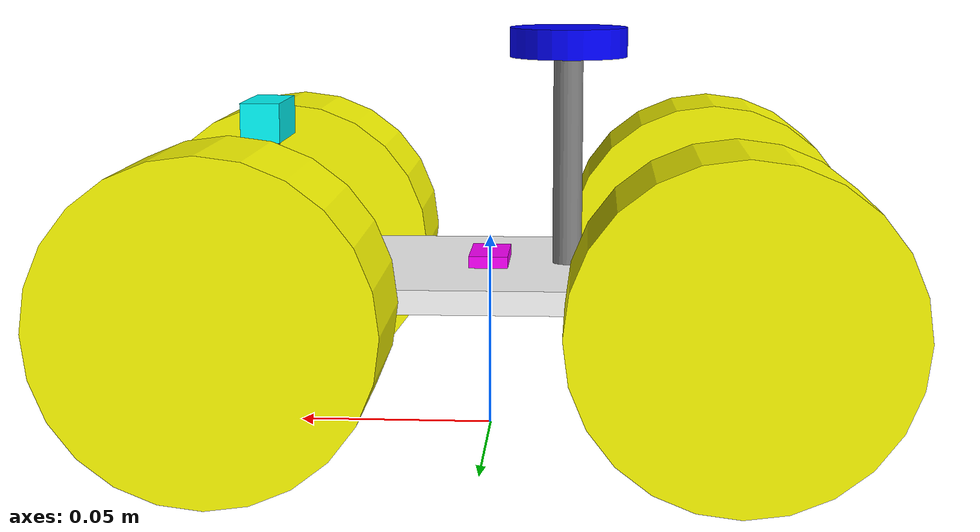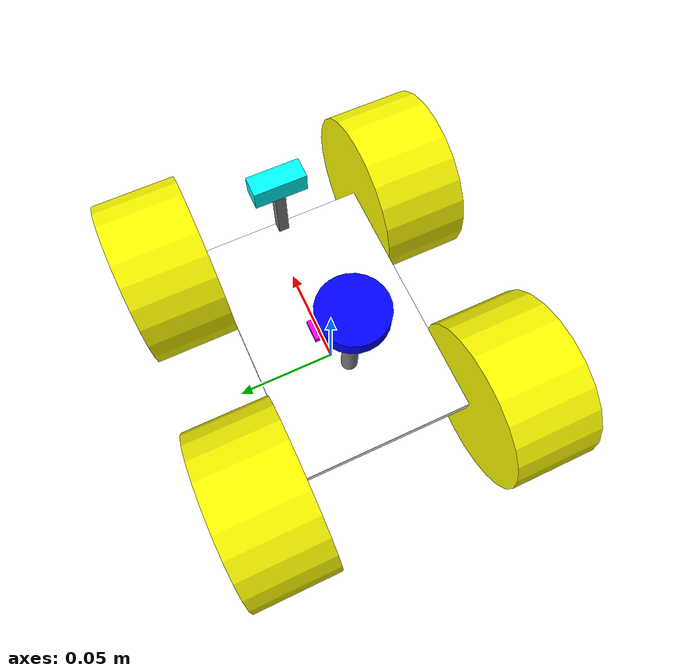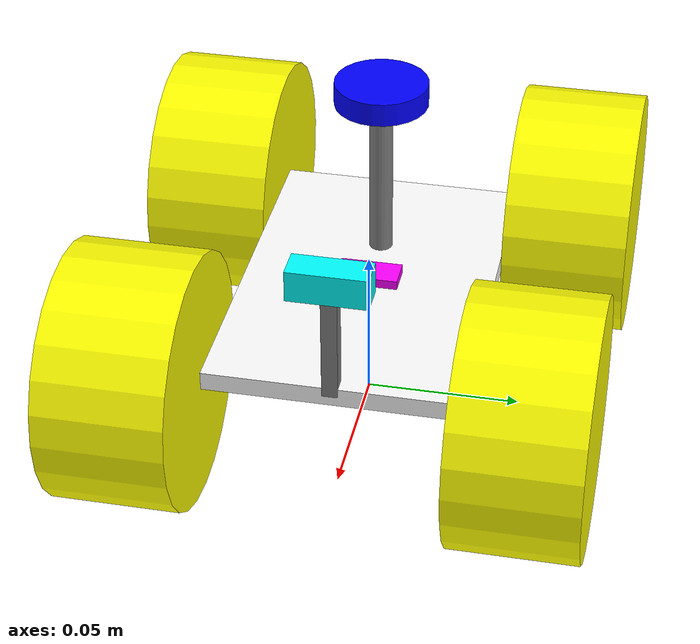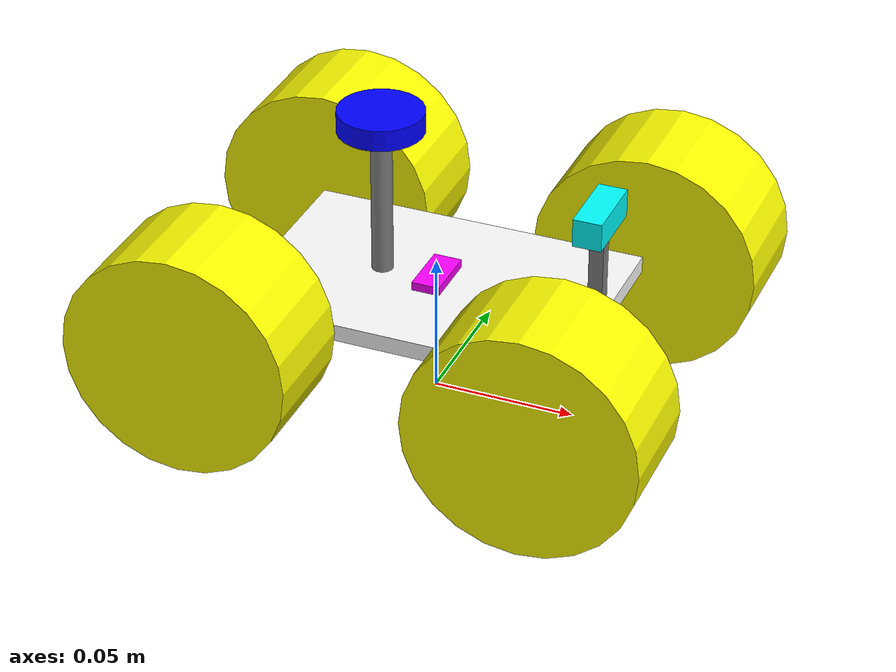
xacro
<?xml version="1.0"?>
<robot xmlns:xacro="http://ros.org/wiki/xacro" name="amr_real">
    <xacro:property name="base_link" value="base_link" />
    <xacro:property name="lidar_link" value="lidar_link" />
    <xacro:property name="camera_link" value="camera_link" />
    <xacro:property name="imu_link" value="imu_link" />

    <xacro:property name="left_front_wheel" value="left_front_wheel" />
    <xacro:property name="left_back_wheel" value="left_back_wheel" />
    <xacro:property name="right_front_wheel" value="right_front_wheel" />
    <xacro:property name="right_back_wheel" value="right_back_wheel" />

    <xacro:include filename="$(find description)/urdf/base.xacro" />
    <xacro:include filename="$(find description)/urdf/wheel.xacro" />
    <xacro:include filename="$(find description)/urdf/lidar.xacro" />
    <xacro:include filename="$(find description)/urdf/camera.xacro" />
    <xacro:include filename="$(find description)/urdf/imu.xacro" />

    <xacro:base name="${base_link}" joint_xyz="0 0 ${wheel_radius}" />
    <xacro:lidar name="${lidar_link}" joint_xyz="-${base_width/4} 0 ${lidar_height/2}" parent_name="${base_link}" />
    <xacro:camera name="${camera_link}" joint_xyz="${base_length/2-camera_support_width/2} 0 ${camera_support_height/2}" parent_name="${base_link}" />
    <xacro:imu name="${imu_link}" joint_xyz="0 0 ${imu_height/2+base_height/2}" parent_name="${base_link}" />

    <xacro:wheel name="${left_front_wheel}" joint_xyz="${base_width/2+wheel_width/2} ${base_length/2} 0" fdir1_value="1 1 1" parent_name="${base_link}" />
    <xacro:wheel name="${left_back_wheel}" joint_xyz="-${base_width/2+wheel_width/2} ${base_length/2} 0" fdir1_value="1 1 1" parent_name="${base_link}" />
    <xacro:wheel name="${right_front_wheel}" joint_xyz="${base_width/2+wheel_width/2} -${base_length/2} 0" fdir1_value="1 1 1" parent_name="${base_link}" />
    <xacro:wheel name="${right_back_wheel}" joint_xyz="-${base_width/2+wheel_width/2} -${base_length/2} 0" fdir1_value="1 1 1" parent_name="${base_link}" />

</robot>

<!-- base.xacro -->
<robot xmlns:xacro="http://ros.org/wiki/xacro" name="base">

    <xacro:include filename="$(find description)/urdf/common_inertia.xacro" />

    <xacro:property name="base_length" value="0.120" />
    <xacro:property name="base_width" value="0.080" />
    <xacro:property name="base_height" value="0.006" />
    <xacro:property name="base_mass" value="1.0" />

    <xacro:property name="link_xyz" value="0 0 0" />
    <xacro:property name="link_rpy" value="0 0 0" />

    <link name="base_footprint" />

    <xacro:macro name="base" params="name joint_xyz">
        <link name="${name}">
            <visual>
                <origin xyz="${link_xyz}" rpy="${link_rpy}" />
                <geometry>
                    <box size="${base_length} ${base_height} ${base_width}" />
                </geometry>
                <material name="grey">
                    <color rgba="1 1 1 1" />
                </material>
            </visual>

            <collision>
                <origin xyz="${link_xyz}" rpy="${link_rpy}" />
                <geometry>
                    <box size="${base_length} ${base_height} ${base_width}" />
                </geometry>
            </collision>
            <xacro:box_inertia m="${base_mass}" w="${base_length}" h="${base_height}" d="${base_width}" xyz="${link_xyz}" rpy="${link_rpy}" />
        </link>

        <joint name="${name}_joint" type="fixed">
            <origin xyz="${joint_xyz}" rpy="0 0 0" />
            <parent link="base_footprint" />
            <child link="${name}" />
        </joint>
    </xacro:macro>
</robot>

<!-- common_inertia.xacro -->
<robot xmlns:xacro="http://ros.org/wiki/xacro">
    <xacro:macro name="box_inertia" params="m w h d xyz rpy">
        <inertial>
            <mass value="${m}" />
            <origin xyz="${xyz}" rpy="${rpy}" />
            <inertia
                ixx="${(1.0/12.0)*m*(h*h + d*d)}"
                iyy="${(1.0/12.0)*m*(w*w + d*d)}"
                izz="${(1.0/12.0)*m*(w*w + h*h)}"
                ixy="0.0" ixz="0.0" iyz="0.0" />
        </inertial>
    </xacro:macro>

    <xacro:macro name="cylinder_inertia" params="m r h xyz rpy">
        <inertial>
            <mass value="${m}" />
            <origin xyz="${xyz}" rpy="${rpy}" />
            <inertia
                ixx="${(1.0/12.0) * m * (3 * r * r + h * h)}"
                iyy="${(1.0/12.0) * m * (3 * r * r + h * h)}"
                izz="${0.5 * m * r * r}"
                ixy="0.0" ixz="0.0" iyz="0.0" />
        </inertial>
    </xacro:macro>

    <xacro:macro name="sphere_inertia" params="m r xyz rpy">
        <inertial>
            <mass value="${m}" />
            <origin xyz="${xyz}" rpy="${rpy}" />
            <inertia
                ixx="${(2.0/5.0) * m * r * r}"
                iyy="${(2.0/5.0) * m * r * r}"
                izz="${(2.0/5.0) * m * r * r}"
                ixy="0.0" ixz="0.0" iyz="0.0" />
        </inertial>
    </xacro:macro>
</robot>

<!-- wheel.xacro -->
<robot xmlns:xacro="http://ros.org/wiki/xacro">

    <xacro:include filename="$(find description)/urdf/common_inertia.xacro" />

    <xacro:property name="wheel_radius" value="0.040" />
    <xacro:property name="wheel_width" value="0.040" />
    <xacro:property name="wheel_mass" value="0.5" />

    <xacro:property name="link_xyz" value="0 0 0" />
    <xacro:property name="link_rpy" value="${pi/2} 0 0" />

    <xacro:macro name="wheel" params="name joint_xyz fdir1_value parent_name">
        <link name='${name}'>
            <visual>
                <origin xyz="${link_xyz}" rpy="${link_rpy}" />
                <geometry>
                    <cylinder radius="${wheel_radius}" length="${wheel_width}" />
                </geometry>
                <material name="yellow">
                    <color rgba="1.0 1.0 0.0 1" />
                </material>
            </visual>

            <collision>
                <origin xyz="${link_xyz}" rpy="${link_rpy}" />
                <geometry>
                    <cylinder radius="${wheel_radius}" length="${wheel_width}" />
                </geometry>
            </collision>

            <xacro:cylinder_inertia m="${wheel_mass}" r="${wheel_radius}" h="${wheel_width}" xyz="${link_xyz}" rpy="${link_rpy}" />
        </link>

        <gazebo reference="${name}">
            <mu1>20.0</mu1>
            <mu2>20.0</mu2>
            <kp>10000000</kp>
            <kd>1.0</kd>
        </gazebo>

        <joint name="${name}_joint" type="continuous">
            <parent link="${parent_name}" />
            <child link="${name}" />
            <origin xyz="${joint_xyz}" rpy="0 0 0" />
            <axis xyz="0 1 0" />
        </joint>
    </xacro:macro>
</robot>

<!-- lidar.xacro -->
<robot xmlns:xacro="http://ros.org/wiki/xacro">
    <xacro:include filename="$(find description)/urdf/common_inertia.xacro" />

    <xacro:property name="lidar_radius" value="0.015" />
    <xacro:property name="lidar_height" value="0.060" />
    <xacro:property name="lidar_mass" value="0.1" />
    <xacro:property name="lidar_length" value="${lidar_radius/2}" />

    <xacro:property name="lidar_support_radius" value="${lidar_radius/4}" />
    <xacro:property name="lidar_support_length" value="${lidar_height}" />
    <xacro:property name="lidar_support_mass" value="0.01" />

    <xacro:macro name="lidar" params="name joint_xyz parent_name">
        <link name="${name}">
            <visual>
                <origin xyz="0 0 0" rpy="0 0 0" />
                <geometry>
                    <cylinder radius="${lidar_radius}" length="${lidar_length}" />
                </geometry>
                <material name="black">
                    <color rgba="0.0 0.0 1.0 1" />
                </material>
            </visual>

            <collision>
                <origin xyz="0 0 0" rpy="0 0 0" />
                <geometry>
                    <cylinder radius="${lidar_radius}" length="${lidar_length}" />
                </geometry>
            </collision>

            <xacro:cylinder_inertia m="${lidar_mass}" r="${lidar_radius}" h="${lidar_length}" xyz="0 0 0" rpy="0 0 0" />
        </link>

        <xacro:property name="support_name" value="support_${name}" />

        <link name="${support_name}">
            <visual>
                <origin xyz="0 0 0" rpy="0 0 0" />
                <geometry>
                    <cylinder radius="${lidar_support_radius}" length="${lidar_support_length}" />
                </geometry>
                <material name="grey">
                    <color rgba="0.5 0.5 0.5 1" />
                </material>
            </visual>

            <collision>
                <origin xyz="0 0 0" rpy="0 0 0" />
                <geometry>
                    <cylinder radius="${lidar_support_radius}" length="${lidar_support_length}" />
                </geometry>
            </collision>

            <xacro:cylinder_inertia m="${lidar_support_mass}" r="${lidar_support_radius}" h="${lidar_support_length}" xyz="0 0 0" rpy="0 0 0" />
        </link>

        <joint name="${support_name}_joint" type="fixed">
            <parent link="${parent_name}" />
            <child link="${support_name}" />
            <origin xyz="${joint_xyz}" rpy="0 0 0" />
        </joint>

        <joint name="${name}_joint" type="fixed">
            <parent link="${support_name}" />
            <child link="${name}" />
            <origin xyz="0 0 ${lidar_height/2}" rpy="0 0 0" />
        </joint>

    </xacro:macro>
</robot>

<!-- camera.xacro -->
<robot xmlns:xacro="http://ros.org/wiki/xacro">
    <xacro:include filename="$(find description)/urdf/common_inertia.xacro" />

    <xacro:property name="camera_length" value="0.025" />
    <xacro:property name="camera_width" value="0.01" />
    <xacro:property name="camera_height" value="0.01" />
    <xacro:property name="camera_mass" value="0.1" />

    <xacro:property name="camera_support_length" value="0.005" />
    <xacro:property name="camera_support_width" value="0.005" />
    <xacro:property name="camera_support_height" value="0.04" />
    <xacro:property name="camera_support_mass" value="0.01" />

    <xacro:macro name="camera" params="name joint_xyz parent_name">
        <link name="${name}">
            <visual>
                <origin xyz="0 0 0" rpy="0 0 0" />
                <geometry>
                    <box size="${camera_width} ${camera_length} ${camera_height}" />
                </geometry>
                <material name="orange">
                    <color rgba="0.0 1.0 1.0 1" />
                </material>
            </visual>

            <collision>
                <origin xyz="0 0 0" rpy="0 0 0" />
                <geometry>
                    <box size="${camera_width} ${camera_length} ${camera_height}" />
                </geometry>
            </collision>

            <xacro:box_inertia m="${camera_mass}" w="${camera_width}" h="${camera_length}" d="${camera_height}" xyz="0 0 0" rpy="0 0 0" />
        </link>

        <xacro:property name="support_name" value="support_${name}" />

        <link name="${support_name}">
            <visual>
                <origin xyz="0 0 0" rpy="0 0 0" />
                <geometry>
                    <box size="${camera_support_width} ${camera_support_length} ${camera_support_height}" />
                </geometry>
                <material name="grey">
                    <color rgba="0.5 0.5 0.5 1" />
                </material>
            </visual>

            <collision>
                <origin xyz="0 0 0" rpy="0 0 0" />
                <geometry>
                    <box size="${camera_support_width} ${camera_support_length} ${camera_support_height}" />
                </geometry>
            </collision>

            <xacro:box_inertia m="${camera_support_mass}" w="${camera_support_width}" h="${camera_support_length}" d="${camera_support_height}" xyz="0 0 0" rpy="0 0 0" />
        </link>

        <joint name="${support_name}_joint" type="fixed">
            <parent link="${parent_name}" />
            <child link="${support_name}" />
            <origin xyz="${joint_xyz}" rpy="0 0 0" />
        </joint>

        <joint name="${name}_joint" type="fixed">
            <parent link="${support_name}" />
            <child link="${name}" />
            <origin xyz="0 0 ${camera_support_height/2}" rpy="0 0 0" />
        </joint>
    </xacro:macro>

</robot>

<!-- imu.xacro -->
<robot xmlns:xacro="http://ros.org/wiki/xacro">
    <xacro:include filename="$(find description)/urdf/common_inertia.xacro" />

    <xacro:property name="imu_length" value="0.01" />
    <xacro:property name="imu_width" value="0.02" />
    <xacro:property name="imu_height" value="0.003" />
    <xacro:property name="imu_mass" value="0.005" />

    <xacro:macro name="imu" params="name joint_xyz parent_name">
        <link name="${name}">
            <visual>
                <origin xyz="0 0 0" rpy="0 0 0" />
                <geometry>
                    <box size="${imu_length} ${imu_width} ${imu_height}" />
                </geometry>
                <material name="purple">
                    <color rgba="1.0 0.0 1.0 1" />
                </material>
            </visual>

            <collision>
                <origin xyz="0 0 0" rpy="0 0 0" />
                <geometry>
                    <box size="${imu_length} ${imu_width} ${imu_height}" />
                </geometry>
            </collision>

            <xacro:box_inertia m="${imu_mass}" w="${imu_length}" h="${imu_width}" d="${imu_height}" xyz="0 0 0" rpy="0 0 0" />
        </link>

        <joint name="${name}_joint" type="fixed">
            <parent link="${parent_name}" />
            <child link="${name}" />
            <origin xyz="${joint_xyz}" rpy="0 0 0" />
        </joint>

    </xacro:macro>
</robot>
